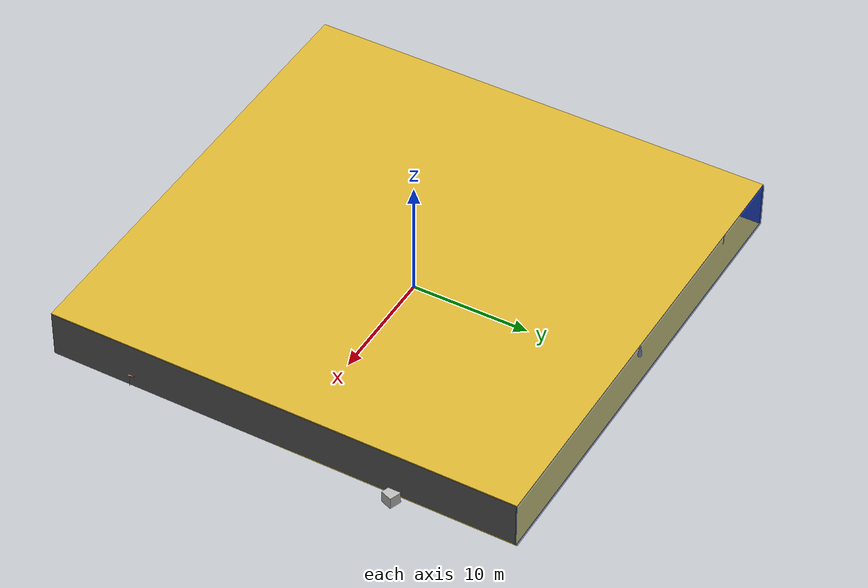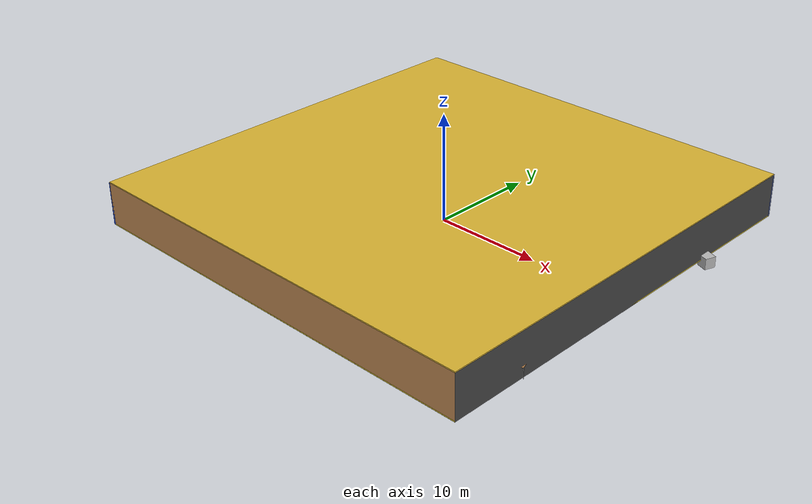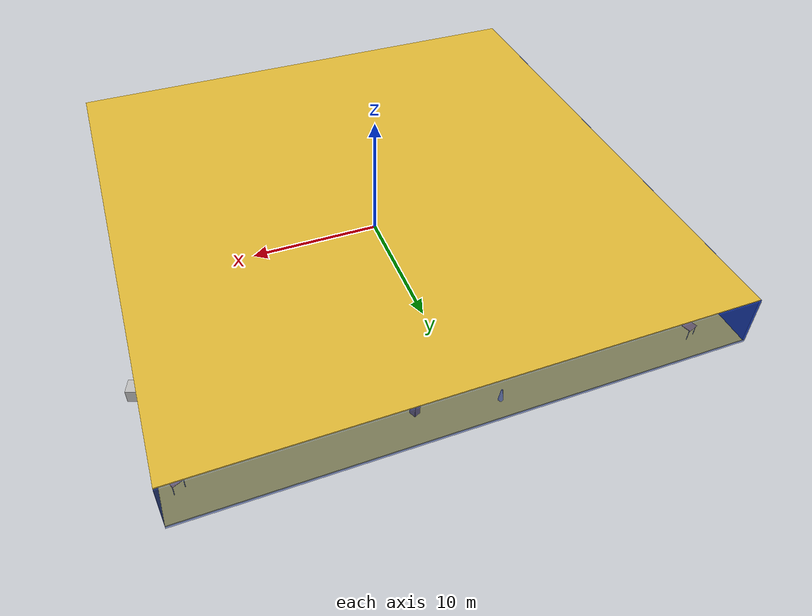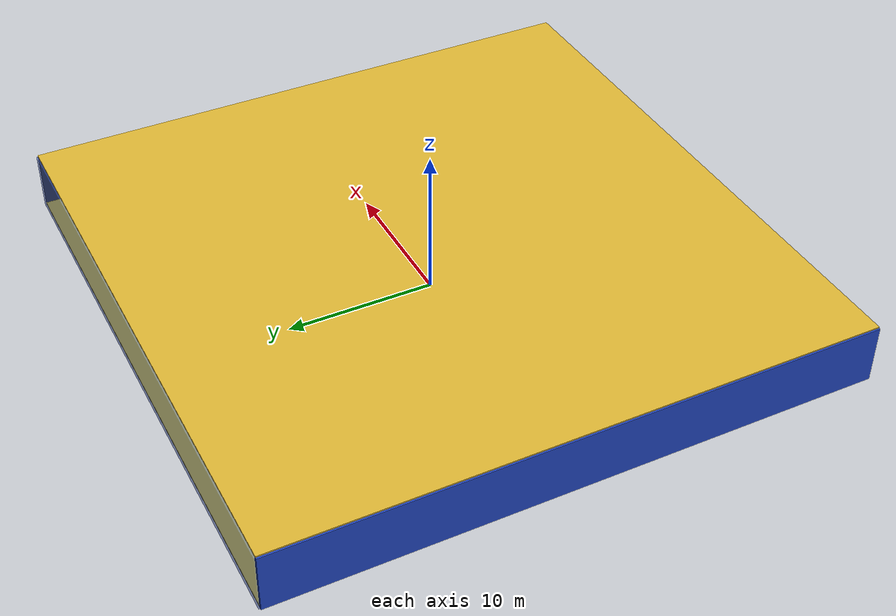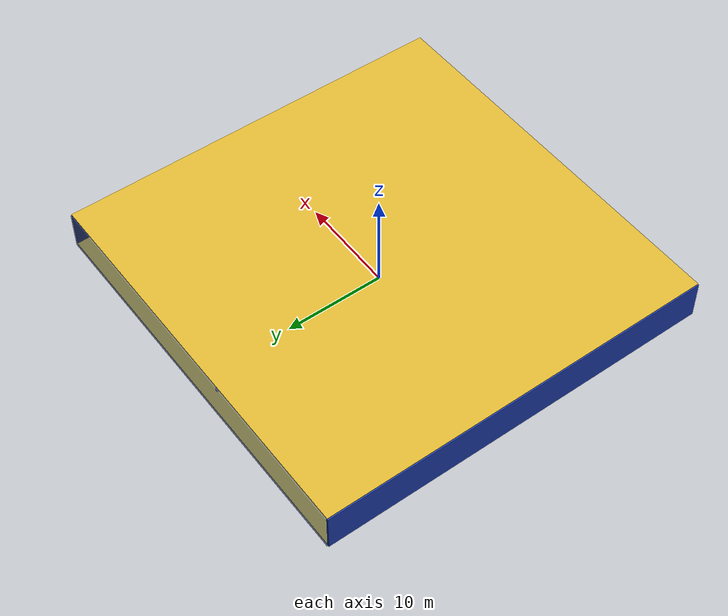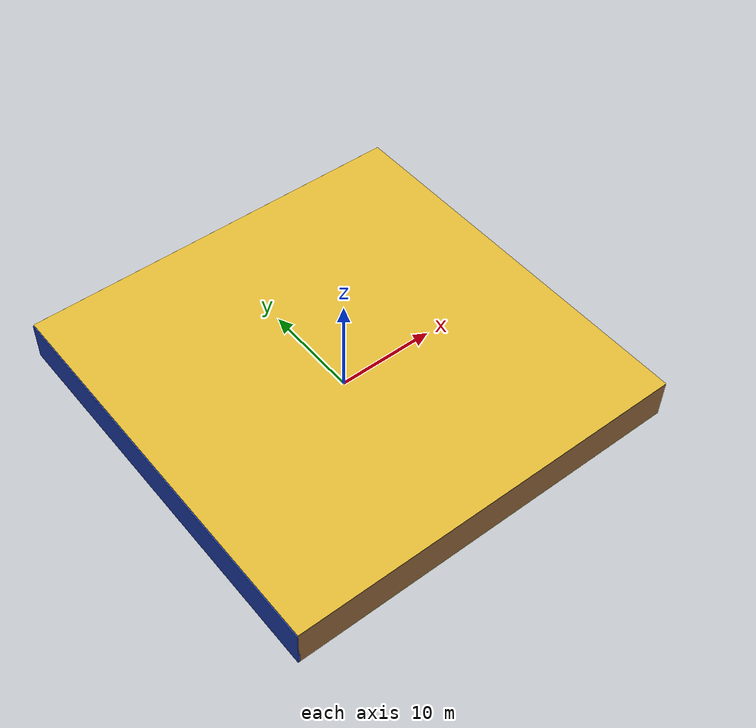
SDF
<sdf version="1.4">
 <world name="default">
  <physics type="ode">
   <max_step_size>0.001</max_step_size>
   <real_time_factor>1</real_time_factor>
   <real_time_update_rate>1000</real_time_update_rate>
   <gravity>0 0 -9.8</gravity>
  </physics>
  <scene><ambient>0.4 0.4 0.4 1</ambient><background>0.7 0.7 0.7 1</background><shadows>1</shadows></scene>
  <model name="Surrounding">
   <static>1</static>
   <link name="Ceiling">
    <collision name="Ceiling_Collision"><geometry><box><size>40 40 0.1</size></box></geometry></collision>
    <visual name="Ceiling_Visual">
     <geometry><box><size>40 40 0.1</size></box></geometry>
     <material>
      <script><uri>file://media/materials/scripts/gazebo.material</uri><name>Gazebo/Gold</name></script>
     </material>
    </visual>
    <pose>0 0 4.05 0 0 0</pose>
   </link>
   <link name="Wall_South">
    <collision name="Wall_South_Collision">
     <geometry><box><size>40 0 4</size></box></geometry>
     <pose>0 0 2 0 -0 0</pose>
    </collision>
    <visual name="Wall_South_Visual">
     <pose>0 0 2 0 -0 0</pose>
     <geometry><box><size>40 0 4</size></box></geometry>
     <material>
      <script><uri>file://media/materials/scripts/gazebo.material</uri><name>Gazebo/WoodPallet</name></script>
     </material>
    </visual>
    <velocity_decay><linear>0</linear><angular>0</angular></velocity_decay>
    <pose>0 -20 0 0 -0 0</pose>
   </link>
   <link name="Wall_East">
    <collision name="Wall_21_Collision">
     <geometry><box><size>40 0 4</size></box></geometry>
     <pose>0 0 2 0 -0 0</pose>
    </collision>
    <visual name="Wall_21_Visual">
     <pose>0 0 2 0 -0 0</pose>
     <geometry><box><size>40 0 4</size></box></geometry>
     <material>
      <script><uri>file://media/materials/scripts/gazebo.material</uri><name>Gazebo/DarkGrey</name></script>
     </material>
    </visual>
    <velocity_decay><linear>0</linear><angular>0</angular></velocity_decay>
    <pose>20 0 0 0 -0 1.5708</pose>
   </link>
   <link name="Wall_North">
    <collision name="Wall_22_Collision">
     <geometry><box><size>40 0.2 4</size></box></geometry>
     <pose>0 0 2 0 -0 0</pose>
    </collision>
    <visual name="Wall_22_Visual">
     <pose>0 0 2 0 -0 0</pose>
     <geometry><box><size>40 0.2 4</size></box></geometry>
     <material>
      <script><uri>file://media/materials/scripts/gazebo.material</uri><name>Gazebo/BlueTransparent</name></script>
     </material>
    </visual>
    <velocity_decay><linear>0</linear><angular>0</angular></velocity_decay>
    <pose>0 20 0 0 -0 0</pose>
   </link>
   <link name="Wall_West">
    <collision name="Wall_23_Collision">
     <geometry><box><size>40 0.2 4</size></box></geometry>
     <pose>0 0 2 0 -0 0</pose>
    </collision>
    <visual name="Wall_23_Visual">
     <pose>0 0 2 0 -0 0</pose>
     <geometry><box><size>40 0.2 4</size></box></geometry>
     <material>
      <script><uri>file://media/materials/scripts/gazebo.material</uri><name>Gazebo/Blue</name></script>
     </material>
    </visual>
    <velocity_decay><linear>0</linear><angular>0</angular></velocity_decay>
    <pose>-20 0 0 0 0 -1.5708</pose>
   </link>
   <link name="Ground_link">
    <collision name="collision">
     <pose>0 0 .05 0 -0 0</pose>
     <geometry><box><size>40 40 0.1</size></box></geometry>
    </collision>
    <visual name="visual">
     <pose>0 0 .05 0 -0 0</pose>
     <geometry><box><size>40 40 0.1</size></box></geometry>
     <material>
      <script><uri>file://media/materials/scripts/gazebo.material</uri><name>Gazebo/ZincYellow</name></script>
     </material>
    </visual>
   </link>
   <static>1</static>
  </model>
  <spherical_coordinates>
   <surface_model>EARTH_WGS84</surface_model>
   <latitude_deg>0</latitude_deg>
   <longitude_deg>0</longitude_deg>
   <elevation>0</elevation>
   <heading_deg>0</heading_deg>
  </spherical_coordinates>
  <light name="lightball_0" type="diffuse">
   <diffuse>0.8 0.8 0.8 1</diffuse>
   <specular>0.2 0.2 0.2 1</specular>
   <attenuation>
    <range>100</range>
    <constant>0.7</constant>
    <linear>0.01</linear>
    <quadratic>0.001</quadratic>
   </attenuation>
   <direction>-0.5 0.1 -0.9</direction>
   <pose>-17.8655348526 -18.5695507028 0.794442233363 0 0 0</pose>
  </light>
  <light name="lightball_1" type="diffuse">
   <diffuse>0.8 0.8 0.8 1</diffuse>
   <specular>0.2 0.2 0.2 1</specular>
   <attenuation>
    <range>100</range>
    <constant>0.7</constant>
    <linear>0.01</linear>
    <quadratic>0.001</quadratic>
   </attenuation>
   <direction>-0.5 0.1 -0.9</direction>
   <pose>12.5603740022 8.7764523884 2.26438686431 0 0 0</pose>
  </light>
  <light name="lightball_2" type="diffuse">
   <diffuse>0.8 0.8 0.8 1</diffuse>
   <specular>0.2 0.2 0.2 1</specular>
   <attenuation>
    <range>100</range>
    <constant>0.7</constant>
    <linear>0.01</linear>
    <quadratic>0.001</quadratic>
   </attenuation>
   <direction>-0.5 0.1 -0.9</direction>
   <pose>-11.0092417721 8.5054389371 2.05948409099 0 0 0</pose>
  </light>
  <light name="lightball_3" type="diffuse">
   <diffuse>0.8 0.8 0.8 1</diffuse>
   <specular>0.2 0.2 0.2 1</specular>
   <attenuation>
    <range>100</range>
    <constant>0.7</constant>
    <linear>0.01</linear>
    <quadratic>0.001</quadratic>
   </attenuation>
   <direction>-0.5 0.1 -0.9</direction>
   <pose>2.01470338443 -8.82958717782 2.25118116502 0 0 0</pose>
  </light>
  <light name="lightball_4" type="diffuse">
   <diffuse>0.8 0.8 0.8 1</diffuse>
   <specular>0.2 0.2 0.2 1</specular>
   <attenuation>
    <range>100</range>
    <constant>0.7</constant>
    <linear>0.01</linear>
    <quadratic>0.001</quadratic>
   </attenuation>
   <direction>-0.5 0.1 -0.9</direction>
   <pose>3.78408113602 -4.06790285218 0.645792770814 0 0 0</pose>
  </light>
  <light name="lightball_5" type="diffuse">
   <diffuse>0.8 0.8 0.8 1</diffuse>
   <specular>0.2 0.2 0.2 1</specular>
   <attenuation>
    <range>100</range>
    <constant>0.7</constant>
    <linear>0.01</linear>
    <quadratic>0.001</quadratic>
   </attenuation>
   <direction>-0.5 0.1 -0.9</direction>
   <pose>12.8284354158 14.3293483358 1.53315860185 0 0 0</pose>
  </light>
  <light name="lightball_6" type="diffuse">
   <diffuse>0.8 0.8 0.8 1</diffuse>
   <specular>0.2 0.2 0.2 1</specular>
   <attenuation>
    <range>100</range>
    <constant>0.7</constant>
    <linear>0.01</linear>
    <quadratic>0.001</quadratic>
   </attenuation>
   <direction>-0.5 0.1 -0.9</direction>
   <pose>-17.0499139963 19.5762901556 0.719196481483 0 0 0</pose>
  </light>
  <light name="lightball_7" type="diffuse">
   <diffuse>0.8 0.8 0.8 1</diffuse>
   <specular>0.2 0.2 0.2 1</specular>
   <attenuation>
    <range>100</range>
    <constant>0.7</constant>
    <linear>0.01</linear>
    <quadratic>0.001</quadratic>
   </attenuation>
   <direction>-0.5 0.1 -0.9</direction>
   <pose>19.0832346951 16.8427973415 3.6019612541 0 0 0</pose>
  </light>
  <include>
   <uri>model://construction_cone</uri>
   <pose>-18.2096702042 7.07338981597 0 0 0 2.11555618254</pose>
  </include>
  <include>
   <uri>model://textured_shapes</uri>
   <pose>-16.3082260726 14.4065226372 0 0 0 1.419047073</pose>
  </include>
  <include><uri>model://table</uri><pose>-16.3970760575 17.8747692065 0 0 0 1.90186640181</pose></include>
  <include>
   <uri>model://textured_shapes</uri>
   <pose>-14.6378057057 -16.361885563 0 0 0 1.58760203429</pose>
  </include>
  <include><uri>model://table</uri><pose>-13.3406885557 -9.42032135591 0 0 0 1.8385039691</pose></include>
  <include>
   <uri>model://robocup_3Dsim_goal</uri>
   <pose>-15.2805148909 11.3599397158 0 0 0 2.9164385381</pose>
  </include>
  <include>
   <uri>model://construction_cone</uri>
   <pose>-12.4619699205 -10.9932632908 0 0 0 2.62655005579</pose>
  </include>
  <include>
   <uri>model://construction_cone</uri>
   <pose>-7.89264302116 6.92331066278 0 0 0 2.75910102161</pose>
  </include>
  <include><uri>model://table</uri><pose>-7.39292949501 13.2952236284 0 0 0 0.30805995216</pose></include>
  <include>
   <uri>model://textured_shapes</uri>
   <pose>-6.15424733768 6.74198609326 0 0 0 1.66999294391</pose>
  </include>
  <include><uri>model://table</uri><pose>-3.32489176333 -16.5593344616 0 0 0 0.496622635756</pose></include>
  <include><uri>model://cabinet</uri><pose>-1.4538672998 -0.0842705076433 0 0 0 1.9211693174</pose></include>
  <include><uri>model://table</uri><pose>-2.56656988483 5.43922266897 0 0 0 1.45971013751</pose></include>
  <include>
   <uri>model://construction_cone</uri>
   <pose>-1.83446343245 18.7190591934 0 0 0 1.60549235141</pose>
  </include>
  <include><uri>model://table</uri><pose>-0.536235737436 -5.04396975329 0 0 0 2.80276936512</pose></include>
  <include><uri>model://cabinet</uri><pose>1.39345282732 -2.1858886264 0 0 0 0.50532487008</pose></include>
  <include><uri>model://table</uri><pose>0.354951880014 7.02674711176 0 0 0 1.88739623572</pose></include>
  <include><uri>model://cabinet</uri><pose>3.78226016205 17.7680651175 0 0 0 0.425026050465</pose></include>
  <include><uri>model://table</uri><pose>9.00665548041 -0.00652190915937 0 0 0 0.284129255068</pose></include>
  <include><uri>model://cabinet</uri><pose>10.1048248484 10.6477091441 0 0 0 2.97650518379</pose></include>
  <include>
   <uri>model://textured_shapes</uri>
   <pose>11.9529970633 6.33256421517 0 0 0 1.60733036415</pose>
  </include>
  <include>
   <uri>model://robocup_3Dsim_goal</uri>
   <pose>15.9805934014 -8.45497930978 0 0 0 0.740381212263</pose>
  </include>
  <include>
   <uri>model://construction_cone</uri>
   <pose>15.0117887427 -5.24172019643 0 0 0 1.65473964489</pose>
  </include>
  <include>
   <uri>model://construction_cone</uri>
   <pose>17.8972107899 -14.9215561832 0 0 0 1.46801047648</pose>
  </include>
  <include><uri>model://table</uri><pose>19.5522250041 -12.5998315539 0 0 0 1.91875259009</pose></include>
  <include><uri>model://cabinet</uri><pose>19.5860840347 -4.51184117463 0 0 0 2.24932936972</pose></include>
  <include>
   <uri>model://textured_shapes</uri>
   <pose>18.9205595447 10.3086400185 0 0 0 1.21679535568</pose>
  </include>
  <include><uri>model://table</uri><pose>19.0902285576 17.4868384722 0 0 0 1.99050134264</pose></include>
 </world>
</sdf>

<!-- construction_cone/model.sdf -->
<sdf version="1.5">
  <model name="Construction Cone">
    <link name="link">
      <collision name="collision">
        <geometry>
          <mesh>
            <scale>10 10 10</scale>
            <uri>file://isr-testbed/construction_cone/meshes/construction_cone.dae</uri>
          </mesh>
        </geometry>
      </collision>
      <visual name="visual">
        <geometry>
          <mesh>
            <scale>10 10 10</scale>
            <uri>file://isr-testbed/construction_cone/meshes/construction_cone.dae</uri>
          </mesh>
        </geometry>
      </visual>
    </link>
  </model>
</sdf>

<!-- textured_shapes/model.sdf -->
<sdf version="1.6">
  <model name="textured_shapes">
    <pose>0 0 0.5 0 0 0</pose>
    <link name="box">
      <pose>0 -1.5 0 0 0 0</pose>
      <collision name="collision">
        <geometry>
          <box>
            <size>1 1 1</size>
          </box>
        </geometry>
      </collision>
      <visual name="visual">
        <geometry>
          <box>
            <size>1 1 1</size>
          </box>
        </geometry>
        <material>
          <script>
            <uri>model://../model_source/models/textured_shapes/materials/scripts</uri>
            <uri>model://../model_source/models/textured_shapes/materials/textures</uri>
            <name>TexturedShape/Squares</name>
          </script>
        </material>
      </visual>
    </link>
    <link name="sphere">
      <collision name="collision">
        <geometry>
          <sphere>
            <radius>0.5</radius>
          </sphere>
        </geometry>
      </collision>
      <visual name="visual">
        <geometry>
          <sphere>
            <radius>0.5</radius>
          </sphere>
        </geometry>
        <material>
          <script>
            <uri>model://../model_source/models/textured_shapes/materials/scripts</uri>
            <uri>model://../model_source/models/textured_shapes/materials/textures</uri>
            <name>TexturedShape/Squares</name>
          </script>
        </material>
      </visual>
    </link>
    <link name="cylinder">
      <pose>0 1.5 0 0 0 0</pose>
      <collision name="collision">
        <geometry>
          <cylinder>
            <radius>0.5</radius>
            <length>1</length>
          </cylinder>
        </geometry>
      </collision>
      <visual name="visual">
        <geometry>
          <cylinder>
            <radius>0.5</radius>
            <length>1</length>
          </cylinder>
        </geometry>
        <material>
          <script>
            <uri>model://../model_source/models/textured_shapes/materials/scripts</uri>
            <uri>model://../model_source/models/textured_shapes/materials/textures</uri>
            <name>TexturedShape/Squares</name>
          </script>
        </material>
      </visual>
    </link>
  </model>
</sdf>

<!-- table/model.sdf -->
<sdf version="1.5">
  <model name="table">
    <static>true</static>
    <link name="link">
      <collision name="surface">
        <pose>0 0 1.0 0 0 0</pose>
        <geometry>
          <box>
            <size>1.5 0.8 0.03</size>
          </box>
        </geometry>
        <surface>
          <friction>
            <ode>
              <mu>0.6</mu>
              <mu2>0.6</mu2>
            </ode>
          </friction>
        </surface>
      </collision>
      <visual name="visual1">
        <pose>0 0 1.0 0 0 0</pose>
        <geometry>
          <box>
            <size>1.5 0.8 0.03</size>
          </box>
        </geometry>
        <material>
          <script>
            <uri>model://media/materials/scripts/gazebo.material</uri>
            <name>Gazebo/Wood</name>
          </script>
        </material>
      </visual>
      <collision name="front_left_leg">
        <pose>0.68 0.38 0.5 0 0 0</pose>
        <geometry>
          <cylinder>
            <radius>0.02</radius>
            <length>1.0</length>
          </cylinder>
        </geometry>
      </collision>
      <visual name="front_left_leg">
        <pose>0.68 0.38 0.5 0 0 0</pose>
        <geometry>
          <cylinder>
            <radius>0.02</radius>
            <length>1.0</length>
          </cylinder>
        </geometry>
        <material>
          <script>
            <uri>model://media/materials/scripts/gazebo.material</uri>
            <name>Gazebo/Grey</name>
          </script>
        </material>
      </visual>
      <collision name="front_right_leg">
        <pose>0.68 -0.38 0.5 0 0 0</pose>
        <geometry>
          <cylinder>
            <radius>0.02</radius>
            <length>1.0</length>
          </cylinder>
        </geometry>
      </collision>
      <visual name="front_right_leg">
        <pose>0.68 -0.38 0.5 0 0 0</pose>
        <geometry>
          <cylinder>
            <radius>0.02</radius>
            <length>1.0</length>
          </cylinder>
        </geometry>
        <material>
          <script>
            <uri>model://media/materials/scripts/gazebo.material</uri>
            <name>Gazebo/Grey</name>
          </script>
        </material>
      </visual>
      <collision name="back_right_leg">
        <pose>-0.68 -0.38 0.5 0 0 0</pose>
        <geometry>
          <cylinder>
            <radius>0.02</radius>
            <length>1.0</length>
          </cylinder>
        </geometry>
      </collision>
      <visual name="back_right_leg">
        <pose>-0.68 -0.38 0.5 0 0 0</pose>
        <geometry>
          <cylinder>
            <radius>0.02</radius>
            <length>1.0</length>
          </cylinder>
        </geometry>
        <material>
          <script>
            <uri>model://media/materials/scripts/gazebo.material</uri>
            <name>Gazebo/Grey</name>
          </script>
        </material>
      </visual>
      <collision name="back_left_leg">
        <pose>-0.68 0.38 0.5 0 0 0</pose>
        <geometry>
          <cylinder>
            <radius>0.02</radius>
            <length>1.0</length>
          </cylinder>
        </geometry>
      </collision>
      <visual name="back_left_leg">
        <pose>-0.68 0.38 0.5 0 0 0</pose>
        <geometry>
          <cylinder>
            <radius>0.02</radius>
            <length>1.0</length>
          </cylinder>
        </geometry>
        <material>
          <script>
            <uri>model://media/materials/scripts/gazebo.material</uri>
            <name>Gazebo/Grey</name>
          </script>
        </material>
      </visual>
    </link>
  </model>
</sdf>

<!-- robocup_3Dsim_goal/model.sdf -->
<sdf version="1.5">
  <model name="robocup_3d_goal">
    <static>true</static>
    <link name="left_post">
      <pose>0 1.05 0.45 0 0 0</pose>
      <collision name="collision">
        <geometry>
          <cylinder>
            <radius>0.05</radius>
            <length>0.9</length>
          </cylinder>
        </geometry>
      </collision>
      <visual name="visual">
        <geometry>
          <cylinder>
            <radius>0.05</radius>
            <length>0.9</length>
          </cylinder>
        </geometry>
        <material>
          <script>
            <uri>file://media/materials/scripts/gazebo.material</uri>
            <name>Gazebo/ZincYellow</name>
          </script>
        </material>
      </visual>
    </link>
    <link name="left_support_horiz_lower">
      <pose>0.30 1.05 0.01 0 0 0</pose>
      <collision name="collision">
        <geometry>
          <box>
            <size>0.50 0.02 0.02</size>
          </box>
        </geometry>
      </collision>
      <visual name="visual">
        <geometry>
          <box>
            <size>0.50 0.02 0.02</size>
          </box>
        </geometry>
        <material>
          <script>
            <uri>file://media/materials/scripts/gazebo.material</uri>
            <name>Gazebo/White</name>
          </script>
        </material>
      </visual>
    </link>
    <link name="left_support_horiz_upper">
      <pose>0.30 1.05 0.79 0 0 0</pose>
      <collision name="collision">
        <geometry>
          <box>
            <size>0.50 0.02 0.02</size>
          </box>
        </geometry>
      </collision>
      <visual name="visual">
        <geometry>
          <box>
            <size>0.50 0.02 0.02</size>
          </box>
        </geometry>
        <material>
          <script>
            <uri>file://media/materials/scripts/gazebo.material</uri>
            <name>Gazebo/White</name>
          </script>
        </material>
      </visual>
    </link>
    <link name="left_support_vertical">
      <pose>0.56 1.05 0.4 0 1.5708 0</pose>
      <collision name="collision">
        <geometry>
          <box>
            <size>0.80 0.02 0.02</size>
          </box>
        </geometry>
      </collision>
      <visual name="visual">
        <geometry>
          <box>
            <size>0.80 0.02 0.02</size>
          </box>
        </geometry>
        <material>
          <script>
            <uri>file://media/materials/scripts/gazebo.material</uri>
            <name>Gazebo/White</name>
          </script>
        </material>
      </visual>
    </link>
    <link name="right_support_horiz_lower">
      <pose>0.30 -1.05 0.01 0 0 0</pose>
      <collision name="collision">
        <geometry>
          <box>
            <size>0.50 0.02 0.02</size>
          </box>
        </geometry>
      </collision>
      <visual name="visual">
        <geometry>
          <box>
            <size>0.50 0.02 0.02</size>
          </box>
        </geometry>
        <material>
          <script>
            <uri>file://media/materials/scripts/gazebo.material</uri>
            <name>Gazebo/White</name>
          </script>
        </material>
      </visual>
    </link>
    <link name="right_support_horiz_upper">
      <pose>0.30 -1.05 0.79 0 0 0</pose>
      <collision name="collision">
        <geometry>
          <box>
            <size>0.50 0.02 0.02</size>
          </box>
        </geometry>
      </collision>
      <visual name="visual">
        <geometry>
          <box>
            <size>0.50 0.02 0.02</size>
          </box>
        </geometry>
        <material>
          <script>
            <uri>file://media/materials/scripts/gazebo.material</uri>
            <name>Gazebo/White</name>
          </script>
        </material>
      </visual>
    </link>
    <link name="right_support_vertical">
      <pose>0.56 -1.05 0.4 0 1.5708 0</pose>
      <collision name="collision">
        <geometry>
          <box>
            <size>0.80 0.02 0.02</size>
          </box>
        </geometry>
      </collision>
      <visual name="visual">
        <geometry>
          <box>
            <size>0.80 0.02 0.02</size>
          </box>
        </geometry>
        <material>
          <script>
            <uri>file://media/materials/scripts/gazebo.material</uri>
            <name>Gazebo/White</name>
          </script>
        </material>
      </visual>
    </link>
    <link name="center_support_horiz_lower">
      <pose>0.56 0 0.01 0 1.5708 0</pose>
      <collision name="collision">
        <geometry>
          <box>
            <size>0.02 2.08 0.02</size>
          </box>
        </geometry>
      </collision>
      <visual name="visual">
        <geometry>
          <box>
            <size>0.02 2.08 0.02</size>
          </box>
        </geometry>
        <material>
          <script>
            <uri>file://media/materials/scripts/gazebo.material</uri>
            <name>Gazebo/White</name>
          </script>
        </material>
      </visual>
    </link>
    <link name="center_support_horiz_upper">
      <pose>0.56 0 0.79 0 1.5708 0</pose>
      <collision name="collision">
        <geometry>
          <box>
            <size>0.02 2.08 0.02</size>
          </box>
        </geometry>
      </collision>
      <visual name="visual">
        <geometry>
          <box>
            <size>0.02 2.08 0.02</size>
          </box>
        </geometry>
        <material>
          <script>
            <uri>file://media/materials/scripts/gazebo.material</uri>
            <name>Gazebo/White</name>
          </script>
        </material>
      </visual>
    </link>
    <link name="right_post">
      <pose>0 -1.05 0.45 0 0 0</pose>
      <collision name="collision">
        <geometry>
          <cylinder>
            <radius>0.05</radius>
            <length>0.9</length>
          </cylinder>
        </geometry>
      </collision>
      <visual name="visual">
        <geometry>
          <cylinder>
            <radius>0.05</radius>
            <length>0.9</length>
          </cylinder>
        </geometry>
        <material>
          <script>
            <uri>file://media/materials/scripts/gazebo.material</uri>
            <name>Gazebo/ZincYellow</name>
          </script>
        </material>
      </visual>
    </link>
    <link name="crossbar">
      <pose>0 0 0.85 1.57 1.57 0</pose>
      <collision name="collision">
        <geometry>
          <cylinder>
            <radius>0.05</radius>
            <length>2.0</length>
          </cylinder>
        </geometry>
      </collision>
      <visual name="visual">
        <geometry>
          <cylinder>
            <radius>0.05</radius>
            <length>2.0</length>
          </cylinder>
        </geometry>
        <material>
          <script>
            <uri>file://media/materials/scripts/gazebo.material</uri>
            <name>Gazebo/ZincYellow</name>
          </script>
        </material>
      </visual>
    </link>
    <link name="center_net">
      <pose>0.56 0 0.40 0 0 0</pose>
      <collision name="collision">
        <geometry>
          <box>
            <size>0.01 2.1 0.80</size>
          </box>
        </geometry>
      </collision>
      <visual name="visual">
        <geometry>
          <box>
            <size>0.01 2.1 0.80</size>
          </box>
        </geometry>
        <material>
          <script>
            <uri>model://../model_source/models/robocup09_spl_field/materials/scripts/</uri>
            <uri>model://../model_source/models/robocup09_spl_field/materials/textures/</uri>
            <name>RoboCup/Net</name>
          </script>
        </material>
      </visual>
    </link>
    <link name="left_net">
      <pose>0.30 1.05 0.40 0 0 0</pose>
      <collision name="collision">
        <geometry>
          <box>
            <size>0.50 0.01 0.76</size>
          </box>
        </geometry>
      </collision>
      <visual name="visual">
        <geometry>
          <box>
            <size>0.50 0.01 0.76</size>
          </box>
        </geometry>
        <material>
          <script>
            <uri>model://../model_source/models/robocup09_spl_field/materials/scripts/</uri>
            <uri>model://../model_source/models/robocup09_spl_field/materials/textures/</uri>
            <name>RoboCup/Net</name>
          </script>
        </material>
      </visual>
    </link>
    <link name="right_net">
      <pose>0.30 -1.05 0.40 0 0 0</pose>
      <collision name="collision">
        <geometry>
          <box>
            <size>0.50 0.01 0.76</size>
          </box>
        </geometry>
      </collision>
      <visual name="visual">
        <geometry>
          <box>
            <size>0.50 0.01 0.76</size>
          </box>
        </geometry>
        <material>
          <script>
            <uri>model://../model_source/models/robocup09_spl_field/materials/scripts/</uri>
            <uri>model://../model_source/models/robocup09_spl_field/materials/textures/</uri>
            <name>RoboCup/Net</name>
          </script>
        </material>
      </visual>
    </link>
  </model>
</sdf>

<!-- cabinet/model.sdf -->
<sdf version="1.5">
  <model name="cabinet">
    <static>true</static>
    <link name="cabinet_bottom_plate">
      <inertial>
        <pose>0 0 -1 0 0 0</pose>
        <inertia>
          <ixx>2.050000</ixx>
          <ixy>0</ixy>
          <ixz>0</ixz>
          <iyy>2.050000</iyy>
          <iyz>0</iyz>
          <izz>2.050000</izz>
        </inertia>
        <mass>25.000000</mass>
      </inertial>
      <collision name="cabinet_bottom_plate_geom">
        <pose>0 0 0.010000 0 0 0</pose>
        <geometry>
          <box>
            <size>0.450000 0.450000 0.020000</size>
          </box>
        </geometry>
      </collision>
      <visual name="cabinet_bottom_plate_geom_visual">
        <pose>0 0 0.010000 0 0 0</pose>
        <geometry>
          <box>
            <size>0.450000 0.450000 0.020000</size>
          </box>
        </geometry>
        <material>
          <script>
            <uri>model://media/materials/scripts/gazebo.material</uri>
            <name>Gazebo/Wood</name>
          </script>
        </material>
      </visual>
      <collision name="cabinet_bottom_plate_geom_cabinet_back_plate">
        <pose>0.235000 0 0.510000 0 0 0</pose>
        <geometry>
          <box>
            <size>0.020000 0.450000 1.020000</size>
          </box>
        </geometry>
      </collision>
      <visual name="cabinet_bottom_plate_geom_cabinet_back_plate_visual">
        <pose>0.235000 0 0.510000 0 0 0</pose>
        <geometry>
          <box>
            <size>0.020000 0.450000 1.020000</size>
          </box>
        </geometry>
        <material>
          <script>
            <uri>model://media/materials/scripts/gazebo.material</uri>
            <name>Gazebo/Wood</name>
          </script>
        </material>
      </visual>
      <collision name="cabinet_bottom_plate_geom_cabinet_left_plate">
        <pose>0 0.235000 0.510000 0 0 0</pose>
        <geometry>
          <box>
            <size>0.450000 0.020000 1.020000</size>
          </box>
        </geometry>
      </collision>
      <visual name="cabinet_bottom_plate_geom_cabinet_left_plate_visual">
        <pose>0 0.235000 0.510000 0 0 0</pose>
        <geometry>
          <box>
            <size>0.450000 0.020000 1.020000</size>
          </box>
        </geometry>
        <material>
          <script>
            <uri>model://media/materials/scripts/gazebo.material</uri>
            <name>Gazebo/Wood</name>
          </script>
        </material>
      </visual>
      <collision name="cabinet_bottom_plate_geom_cabinet_middle_plate">
        <pose>0 0 0.510000 0 0 0</pose>
        <geometry>
          <box>
            <size>0.450000 0.450000 0.020000</size>
          </box>
        </geometry>
      </collision>
      <visual name="cabinet_bottom_plate_geom_cabinet_middle_plate_visual">
        <pose>0 0 0.510000 0 0 0</pose>
        <geometry>
          <box>
            <size>0.450000 0.450000 0.020000</size>
          </box>
        </geometry>
        <material>
          <script>
            <uri>model://media/materials/scripts/gazebo.material</uri>
            <name>Gazebo/Wood</name>
          </script>
        </material>
      </visual>
      <collision name="cabinet_bottom_plate_geom_cabinet_right_plate">
        <pose>0 -0.235000 0.510000 0 0 0</pose>
        <geometry>
          <box>
            <size>0.450000 0.020000 1.020000</size>
          </box>
        </geometry>
      </collision>
      <visual name="cabinet_bottom_plate_geom_cabinet_right_plate_visual">
        <pose>0 -0.235000 0.510000 0 0 0</pose>
        <geometry>
          <box>
            <size>0.450000 0.020000 1.020000</size>
          </box>
        </geometry>
        <material>
          <script>
            <uri>model://media/materials/scripts/gazebo.material</uri>
            <name>Gazebo/Wood</name>
          </script>
        </material>
      </visual>
      <collision name="cabinet_bottom_plate_geom_cabinet_top_plate">
        <pose>0 0 1.010000 0 0 0</pose>
        <geometry>
          <box>
            <size>0.450000 0.450000 0.020000</size>
          </box>
        </geometry>
      </collision>
      <visual name="cabinet_bottom_plate_geom_cabinet_top_plate_visual">
        <pose>0 0 1.010000 0 0 0</pose>
        <geometry>
          <box>
            <size>0.450000 0.450000 0.020000</size>
          </box>
        </geometry>
        <material>
          <script>
            <uri>model://media/materials/scripts/gazebo.material</uri>
            <name>Gazebo/Wood</name>
          </script>
        </material>
      </visual>
    </link>
  </model>
</sdf>
